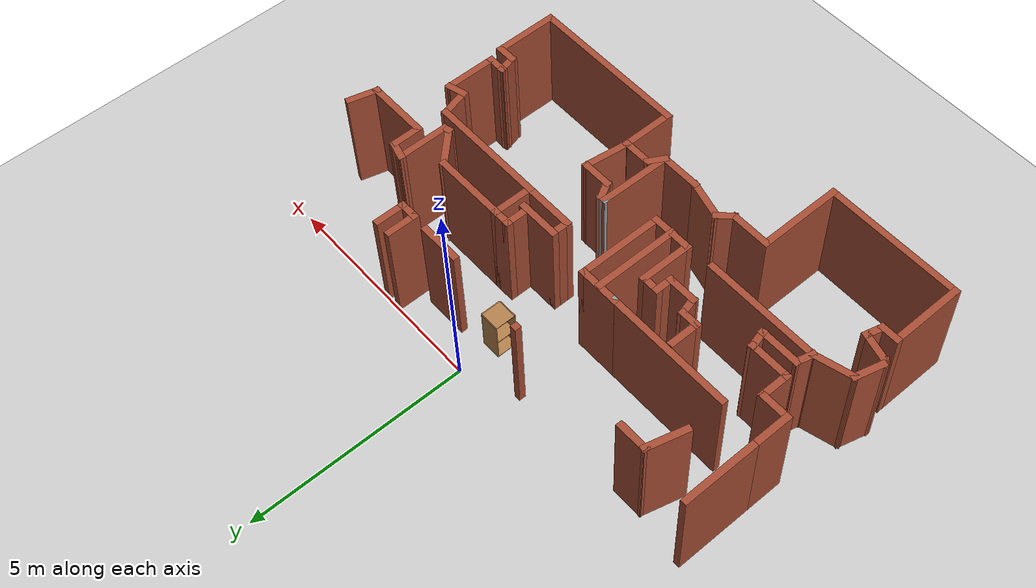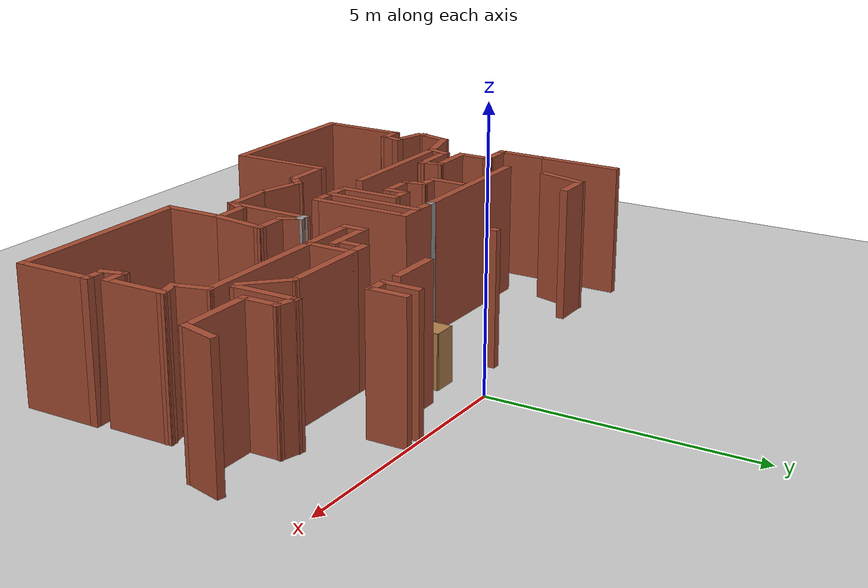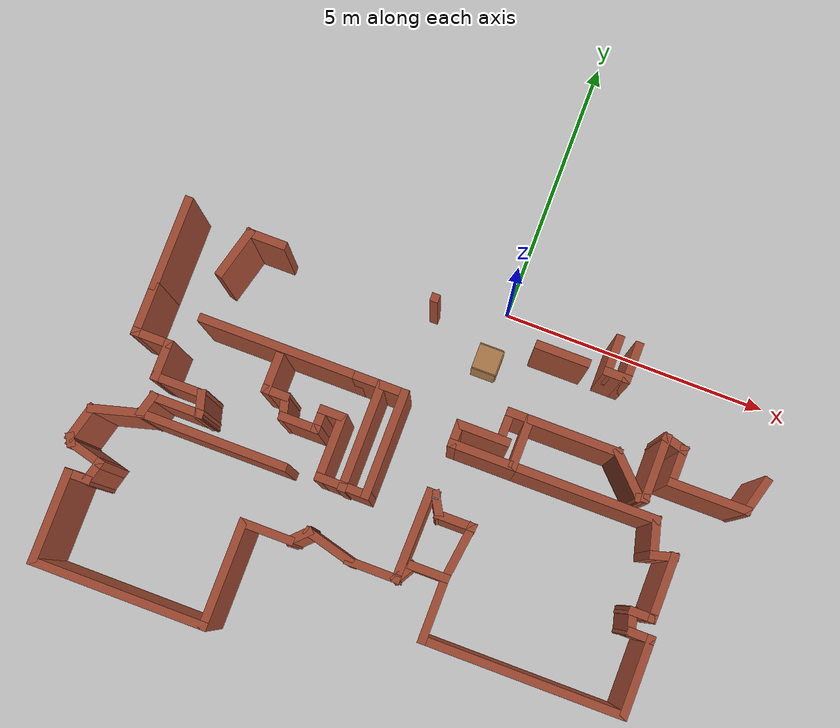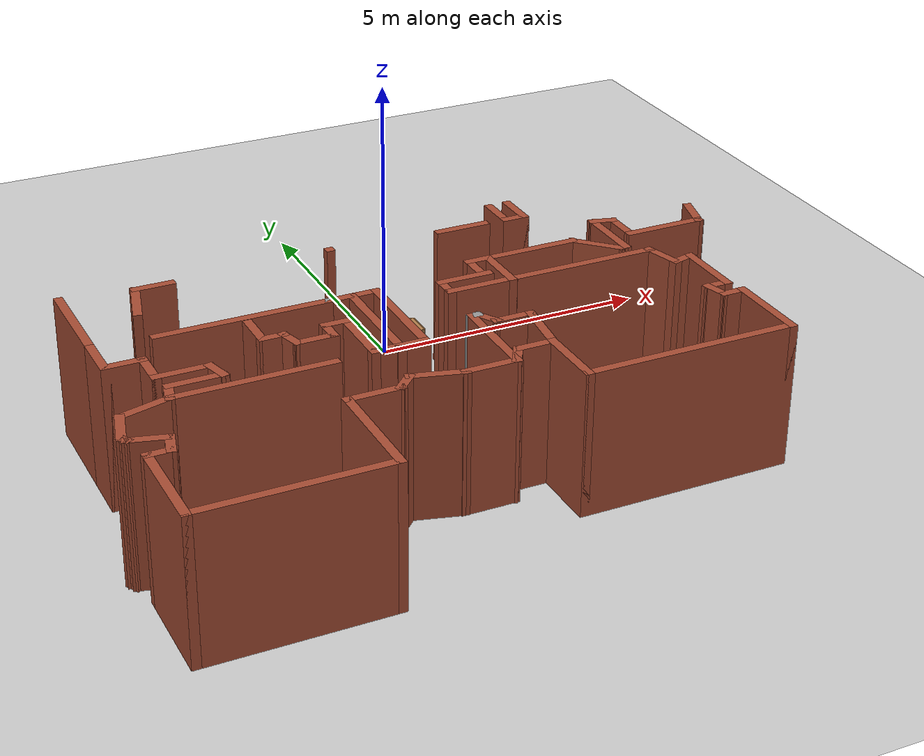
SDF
<sdf version="1.7">
 <world name="default">
  <model name="ground_plane">
   <static>1</static>
   <link name="link">
    <collision name="collision">
     <geometry><plane><normal>0 0 1</normal><size>100 100</size></plane></geometry>
     <surface>
      <contact><collide_bitmask>65535</collide_bitmask></contact>
      <friction><ode><mu>100</mu><mu2>50</mu2></ode></friction>
     </surface>
    </collision>
    <visual name="visual">
     <cast_shadows>0</cast_shadows>
     <geometry><plane><normal>0 0 1</normal><size>100 100</size></plane></geometry>
     <material>
      <script><uri>file://media/materials/scripts/gazebo.material</uri><name>Gazebo/Grey</name></script>
     </material>
    </visual>
   </link>
  </model>
  <model name="map_14">
   <pose>-1.02181 -0.3828 0 0 -0 0</pose>
   <link name="Wall_143">
    <collision name="Wall_143_Collision">
     <geometry><box><size>1 0.15 2.5</size></box></geometry>
     <pose>0 0 1.25 0 -0 0</pose>
    </collision>
    <visual name="Wall_143_Visual">
     <pose>0 0 1.25 0 -0 0</pose>
     <geometry><box><size>1 0.15 2.5</size></box></geometry>
     <material>
      <script><uri>file://media/materials/scripts/gazebo.material</uri><name>Gazebo/Bricks</name></script>
      <ambient>1 1 1 1</ambient>
     </material>
     <meta><layer>0</layer></meta>
    </visual>
    <pose>2.19503 -0.283539 0 0 -0 0</pose>
   </link>
   <link name="Wall_148">
    <collision name="Wall_148_Collision">
     <geometry><box><size>0.75 0.15 2.5</size></box></geometry>
     <pose>0 0 1.25 0 -0 0</pose>
    </collision>
    <visual name="Wall_148_Visual">
     <pose>0 0 1.25 0 -0 0</pose>
     <geometry><box><size>0.75 0.15 2.5</size></box></geometry>
     <material>
      <script><uri>file://media/materials/scripts/gazebo.material</uri><name>Gazebo/Bricks</name></script>
      <ambient>1 1 1 1</ambient>
     </material>
     <meta><layer>0</layer></meta>
    </visual>
    <pose>3.02129 -0.004847 0 0 -0 -1.5708</pose>
   </link>
   <link name="Wall_149">
    <collision name="Wall_149_Collision">
     <geometry><box><size>0.5 0.15 2.5</size></box></geometry>
     <pose>0 0 1.25 0 -0 0</pose>
    </collision>
    <visual name="Wall_149_Visual">
     <pose>0 0 1.25 0 -0 0</pose>
     <geometry><box><size>0.5 0.15 2.5</size></box></geometry>
     <material>
      <script><uri>file://media/materials/scripts/gazebo.material</uri><name>Gazebo/Bricks</name></script>
      <ambient>1 1 1 1</ambient>
     </material>
     <meta><layer>0</layer></meta>
    </visual>
    <pose>3.19629 -0.304847 0 0 -0 0</pose>
   </link>
   <link name="Wall_150">
    <collision name="Wall_150_Collision">
     <geometry><box><size>0.75 0.15 2.5</size></box></geometry>
     <pose>0 0 1.25 0 -0 0</pose>
    </collision>
    <visual name="Wall_150_Visual">
     <pose>0 0 1.25 0 -0 0</pose>
     <geometry><box><size>0.75 0.15 2.5</size></box></geometry>
     <material>
      <script><uri>file://media/materials/scripts/gazebo.material</uri><name>Gazebo/Bricks</name></script>
      <ambient>1 1 1 1</ambient>
     </material>
     <meta><layer>0</layer></meta>
    </visual>
    <pose>3.37129 -0.004847 0 0 -0 1.5708</pose>
   </link>
   <link name="Wall_156">
    <collision name="Wall_156_Collision">
     <geometry><box><size>0.15 0.15 2.5</size></box></geometry>
     <pose>0 0 1.25 0 -0 0</pose>
    </collision>
    <visual name="Wall_156_Visual">
     <pose>0 0 1.25 0 -0 0</pose>
     <geometry><box><size>0.15 0.15 2.5</size></box></geometry>
     <material>
      <script><uri>file://media/materials/scripts/gazebo.material</uri><name>Gazebo/Bricks</name></script>
      <ambient>1 1 1 1</ambient>
     </material>
     <meta><layer>0</layer></meta>
    </visual>
    <pose>-0.202978 -0.141349 0 0 -0 0</pose>
   </link>
   <link name="Wall_160">
    <collision name="Wall_160_Collision">
     <geometry><box><size>0.75 0.15 2.5</size></box></geometry>
     <pose>0 0 1.25 0 -0 0</pose>
    </collision>
    <visual name="Wall_160_Visual">
     <pose>0 0 1.25 0 -0 0</pose>
     <geometry><box><size>0.75 0.15 2.5</size></box></geometry>
     <material>
      <script><uri>file://media/materials/scripts/gazebo.material</uri><name>Gazebo/Bricks</name></script>
      <ambient>1 1 1 1</ambient>
     </material>
     <meta><layer>0</layer></meta>
    </visual>
    <pose>-3.30827 -0.201289 0 0 -0 3.14159</pose>
   </link>
   <link name="Wall_161">
    <collision name="Wall_161_Collision">
     <geometry><box><size>1 0.15 2.5</size></box></geometry>
     <pose>0 0 1.25 0 -0 0</pose>
    </collision>
    <visual name="Wall_161_Visual">
     <pose>0 0 1.25 0 -0 0</pose>
     <geometry><box><size>1 0.15 2.5</size></box></geometry>
     <material>
      <script><uri>file://media/materials/scripts/gazebo.material</uri><name>Gazebo/Bricks</name></script>
      <ambient>1 1 1 1</ambient>
     </material>
     <meta><layer>0</layer></meta>
    </visual>
    <pose>-3.71827 -0.611807 0 0 -0 -1.8326</pose>
   </link>
   <link name="Wall_163">
    <collision name="Wall_163_Collision">
     <geometry><box><size>3 0.15 2.5</size></box></geometry>
     <pose>0 0 1.25 0 -0 0</pose>
    </collision>
    <visual name="Wall_163_Visual">
     <pose>0 0 1.25 0 -0 0</pose>
     <geometry><box><size>3 0.15 2.5</size></box></geometry>
     <material>
      <script><uri>file://media/materials/scripts/gazebo.material</uri><name>Gazebo/Bricks</name></script>
      <ambient>1 1 1 1</ambient>
     </material>
     <meta><layer>0</layer></meta>
    </visual>
    <pose>-2.39233 -1.87711 0 0 -0 0</pose>
   </link>
   <link name="Wall_164">
    <collision name="Wall_164_Collision">
     <geometry><box><size>0.15 0.15 2.5</size></box></geometry>
     <pose>0 0 1.25 0 -0 0</pose>
    </collision>
    <visual name="Wall_164_Visual">
     <pose>0 0 1.25 0 -0 0</pose>
     <geometry><box><size>0.15 0.15 2.5</size></box></geometry>
     <material>
      <script><uri>file://media/materials/scripts/gazebo.material</uri><name>Gazebo/Grey</name></script>
      <ambient>1 1 1 1</ambient>
     </material>
     <meta><layer>0</layer></meta>
    </visual>
    <pose>-0.967326 -1.87711 0 0 -0 0</pose>
   </link>
   <link name="Wall_165">
    <collision name="Wall_165_Collision">
     <geometry><box><size>1 0.15 2.5</size></box></geometry>
     <pose>0 0 1.25 0 -0 0</pose>
    </collision>
    <visual name="Wall_165_Visual">
     <pose>0 0 1.25 0 -0 0</pose>
     <geometry><box><size>1 0.15 2.5</size></box></geometry>
     <material>
      <script><uri>file://media/materials/scripts/gazebo.material</uri><name>Gazebo/Bricks</name></script>
      <ambient>1 1 1 1</ambient>
     </material>
     <meta><layer>0</layer></meta>
    </visual>
    <pose>-0.542326 -1.87711 0 0 -0 0</pose>
   </link>
   <link name="Wall_166">
    <collision name="Wall_166_Collision">
     <geometry><box><size>2 0.15 2.5</size></box></geometry>
     <pose>0 0 1.25 0 -0 0</pose>
    </collision>
    <visual name="Wall_166_Visual">
     <pose>0 0 1.25 0 -0 0</pose>
     <geometry><box><size>2 0.15 2.5</size></box></geometry>
     <material>
      <script><uri>file://media/materials/scripts/gazebo.material</uri><name>Gazebo/Bricks</name></script>
      <ambient>1 1 1 1</ambient>
     </material>
     <meta><layer>0</layer></meta>
    </visual>
    <pose>-0.117326 -2.80211 0 0 -0 -1.5708</pose>
   </link>
   <link name="Wall_167">
    <collision name="Wall_167_Collision">
     <geometry><box><size>1 0.15 2.5</size></box></geometry>
     <pose>0 0 1.25 0 -0 0</pose>
    </collision>
    <visual name="Wall_167_Visual">
     <pose>0 0 1.25 0 -0 0</pose>
     <geometry><box><size>1 0.15 2.5</size></box></geometry>
     <material>
      <script><uri>file://media/materials/scripts/gazebo.material</uri><name>Gazebo/Bricks</name></script>
      <ambient>1 1 1 1</ambient>
     </material>
     <meta><layer>0</layer></meta>
    </visual>
    <pose>-0.542326 -3.72711 0 0 -0 3.14159</pose>
   </link>
   <link name="Wall_168">
    <collision name="Wall_168_Collision">
     <geometry><box><size>1.25 0.15 2.5</size></box></geometry>
     <pose>0 0 1.25 0 -0 0</pose>
    </collision>
    <visual name="Wall_168_Visual">
     <pose>0 0 1.25 0 -0 0</pose>
     <geometry><box><size>1.25 0.15 2.5</size></box></geometry>
     <material>
      <script><uri>file://media/materials/scripts/gazebo.material</uri><name>Gazebo/Bricks</name></script>
      <ambient>1 1 1 1</ambient>
     </material>
     <meta><layer>0</layer></meta>
    </visual>
    <pose>-0.967326 -3.17711 0 0 -0 1.5708</pose>
   </link>
   <link name="Wall_169">
    <collision name="Wall_169_Collision">
     <geometry><box><size>0.5 0.15 2.5</size></box></geometry>
     <pose>0 0 1.25 0 -0 0</pose>
    </collision>
    <visual name="Wall_169_Visual">
     <pose>0 0 1.25 0 -0 0</pose>
     <geometry><box><size>0.5 0.15 2.5</size></box></geometry>
     <material>
      <script><uri>file://media/materials/scripts/gazebo.material</uri><name>Gazebo/Bricks</name></script>
      <ambient>1 1 1 1</ambient>
     </material>
     <meta><layer>0</layer></meta>
    </visual>
    <pose>-1.14233 -2.62711 0 0 -0 3.14159</pose>
   </link>
   <link name="Wall_170">
    <collision name="Wall_170_Collision">
     <geometry><box><size>0.5 0.15 2.5</size></box></geometry>
     <pose>0 0 1.25 0 -0 0</pose>
    </collision>
    <visual name="Wall_170_Visual">
     <pose>0 0 1.25 0 -0 0</pose>
     <geometry><box><size>0.5 0.15 2.5</size></box></geometry>
     <material>
      <script><uri>file://media/materials/scripts/gazebo.material</uri><name>Gazebo/Bricks</name></script>
      <ambient>1 1 1 1</ambient>
     </material>
     <meta><layer>0</layer></meta>
    </visual>
    <pose>-1.31733 -2.80211 0 0 -0 -1.5708</pose>
   </link>
   <link name="Wall_171">
    <collision name="Wall_171_Collision">
     <geometry><box><size>0.75 0.15 2.5</size></box></geometry>
     <pose>0 0 1.25 0 -0 0</pose>
    </collision>
    <visual name="Wall_171_Visual">
     <pose>0 0 1.25 0 -0 0</pose>
     <geometry><box><size>0.75 0.15 2.5</size></box></geometry>
     <material>
      <script><uri>file://media/materials/scripts/gazebo.material</uri><name>Gazebo/Bricks</name></script>
      <ambient>1 1 1 1</ambient>
     </material>
     <meta><layer>0</layer></meta>
    </visual>
    <pose>-1.61733 -2.97711 0 0 -0 3.14159</pose>
   </link>
   <link name="Wall_172">
    <collision name="Wall_172_Collision">
     <geometry><box><size>0.5 0.15 2.5</size></box></geometry>
     <pose>0 0 1.25 0 -0 0</pose>
    </collision>
    <visual name="Wall_172_Visual">
     <pose>0 0 1.25 0 -0 0</pose>
     <geometry><box><size>0.5 0.15 2.5</size></box></geometry>
     <material>
      <script><uri>file://media/materials/scripts/gazebo.material</uri><name>Gazebo/Bricks</name></script>
      <ambient>1 1 1 1</ambient>
     </material>
     <meta><layer>0</layer></meta>
    </visual>
    <pose>-1.96262 -2.80808 0 0 -0 1.8326</pose>
   </link>
   <link name="Wall_173">
    <collision name="Wall_173_Collision">
     <geometry><box><size>0.5 0.15 2.5</size></box></geometry>
     <pose>0 0 1.25 0 -0 0</pose>
    </collision>
    <visual name="Wall_173_Visual">
     <pose>0 0 1.25 0 -0 0</pose>
     <geometry><box><size>0.5 0.15 2.5</size></box></geometry>
     <material>
      <script><uri>file://media/materials/scripts/gazebo.material</uri><name>Gazebo/Bricks</name></script>
      <ambient>1 1 1 1</ambient>
     </material>
     <meta><layer>0</layer></meta>
    </visual>
    <pose>-2.18291 -2.63904 0 0 -0 3.14159</pose>
   </link>
   <link name="Wall_174">
    <collision name="Wall_174_Collision">
     <geometry><box><size>0.75 0.15 2.5</size></box></geometry>
     <pose>0 0 1.25 0 -0 0</pose>
    </collision>
    <visual name="Wall_174_Visual">
     <pose>0 0 1.25 0 -0 0</pose>
     <geometry><box><size>0.75 0.15 2.5</size></box></geometry>
     <material>
      <script><uri>file://media/materials/scripts/gazebo.material</uri><name>Gazebo/Bricks</name></script>
      <ambient>1 1 1 1</ambient>
     </material>
     <meta><layer>0</layer></meta>
    </visual>
    <pose>-2.35791 -2.33904 0 0 -0 1.5708</pose>
   </link>
   <link name="Wall_176">
    <collision name="Wall_176_Collision">
     <geometry><box><size>2 0.15 2.5</size></box></geometry>
     <pose>0 0 1.25 0 -0 0</pose>
    </collision>
    <visual name="Wall_176_Visual">
     <pose>0 0 1.25 0 -0 0</pose>
     <geometry><box><size>2 0.15 2.5</size></box></geometry>
     <material>
      <script><uri>file://media/materials/scripts/gazebo.material</uri><name>Gazebo/Bricks</name></script>
      <ambient>1 1 1 1</ambient>
     </material>
     <meta><layer>0</layer></meta>
    </visual>
    <pose>-0.538814 -2.82223 0 0 -0 -1.5708</pose>
   </link>
   <link name="Wall_178">
    <collision name="Wall_178_Collision">
     <geometry><box><size>2.75 0.15 2.5</size></box></geometry>
     <pose>0 0 1.25 0 -0 0</pose>
    </collision>
    <visual name="Wall_178_Visual">
     <pose>0 0 1.25 0 -0 0</pose>
     <geometry><box><size>2.75 0.15 2.5</size></box></geometry>
     <material>
      <script><uri>file://media/materials/scripts/gazebo.material</uri><name>Gazebo/Bricks</name></script>
      <ambient>1 1 1 1</ambient>
     </material>
     <meta><layer>0</layer></meta>
    </visual>
    <pose>-2.91629 -3.77157 0 0 -0 0</pose>
   </link>
   <link name="Wall_180">
    <collision name="Wall_180_Collision">
     <geometry><box><size>1.71861 0.15 2.5</size></box></geometry>
     <pose>0 0 1.25 0 -0 0</pose>
    </collision>
    <visual name="Wall_180_Visual">
     <pose>0 0 1.25 0 -0 0</pose>
     <geometry><box><size>1.71861 0.15 2.5</size></box></geometry>
     <material>
      <script><uri>file://media/materials/scripts/gazebo.material</uri><name>Gazebo/Bricks</name></script>
      <ambient>1 1 1 1</ambient>
     </material>
     <meta><layer>0</layer></meta>
    </visual>
    <pose>0.877062 -4.08939 0 0 -0 -1.58634</pose>
   </link>
   <link name="Wall_182">
    <collision name="Wall_182_Collision">
     <geometry><box><size>0.25 0.15 2.5</size></box></geometry>
     <pose>0 0 1.25 0 -0 0</pose>
    </collision>
    <visual name="Wall_182_Visual">
     <pose>0 0 1.25 0 -0 0</pose>
     <geometry><box><size>0.25 0.15 2.5</size></box></geometry>
     <material>
      <script><uri>file://media/materials/scripts/gazebo.material</uri><name>Gazebo/Grey</name></script>
      <ambient>1 1 1 1</ambient>
     </material>
     <meta><layer>0</layer></meta>
    </visual>
    <pose>0.939249 -3.30518 0 0 -0 0</pose>
   </link>
   <link name="Wall_183">
    <collision name="Wall_183_Collision">
     <geometry><box><size>0.5 0.15 2.5</size></box></geometry>
     <pose>0 0 1.25 0 -0 0</pose>
    </collision>
    <visual name="Wall_183_Visual">
     <pose>0 0 1.25 0 -0 0</pose>
     <geometry><box><size>0.5 0.15 2.5</size></box></geometry>
     <material>
      <script><uri>file://media/materials/scripts/gazebo.material</uri><name>Gazebo/Bricks</name></script>
      <ambient>1 1 1 1</ambient>
     </material>
     <meta><layer>0</layer></meta>
    </visual>
    <pose>1.07675 -3.45673 0 0 -0 -1.0472</pose>
   </link>
   <link name="Wall_184">
    <collision name="Wall_184_Collision">
     <geometry><box><size>0.75 0.15 2.5</size></box></geometry>
     <pose>0 0 1.25 0 -0 0</pose>
    </collision>
    <visual name="Wall_184_Visual">
     <pose>0 0 1.25 0 -0 0</pose>
     <geometry><box><size>0.75 0.15 2.5</size></box></geometry>
     <material>
      <script><uri>file://media/materials/scripts/gazebo.material</uri><name>Gazebo/Bricks</name></script>
      <ambient>1 1 1 1</ambient>
     </material>
     <meta><layer>0</layer></meta>
    </visual>
    <pose>1.46425 -3.60829 0 0 -0 0</pose>
   </link>
   <link name="Wall_185">
    <collision name="Wall_185_Collision">
     <geometry><box><size>1.12021 0.15 2.5</size></box></geometry>
     <pose>0 0 1.25 0 -0 0</pose>
    </collision>
    <visual name="Wall_185_Visual">
     <pose>0 0 1.25 0 -0 0</pose>
     <geometry><box><size>1.12021 0.15 2.5</size></box></geometry>
     <material>
      <script><uri>file://media/materials/scripts/gazebo.material</uri><name>Gazebo/Bricks</name></script>
      <ambient>1 1 1 1</ambient>
     </material>
     <meta><layer>0</layer></meta>
    </visual>
    <pose>1.70206 -4.08939 0 0 -0 -1.69934</pose>
   </link>
   <link name="Wall_187">
    <collision name="Wall_187_Collision">
     <geometry><box><size>0.5 0.15 2.5</size></box></geometry>
     <pose>0 0 1.25 0 -0 0</pose>
    </collision>
    <visual name="Wall_187_Visual">
     <pose>0 0 1.25 0 -0 0</pose>
     <geometry><box><size>0.5 0.15 2.5</size></box></geometry>
     <material>
      <script><uri>file://media/materials/scripts/gazebo.material</uri><name>Gazebo/Bricks</name></script>
      <ambient>1 1 1 1</ambient>
     </material>
     <meta><layer>0</layer></meta>
    </visual>
    <pose>1.88092 -1.54345 0 0 -0 3.14159</pose>
   </link>
   <link name="Wall_188">
    <collision name="Wall_188_Collision">
     <geometry><box><size>0.5 0.15 2.5</size></box></geometry>
     <pose>0 0 1.25 0 -0 0</pose>
    </collision>
    <visual name="Wall_188_Visual">
     <pose>0 0 1.25 0 -0 0</pose>
     <geometry><box><size>0.5 0.15 2.5</size></box></geometry>
     <material>
      <script><uri>file://media/materials/scripts/gazebo.material</uri><name>Gazebo/Bricks</name></script>
      <ambient>1 1 1 1</ambient>
     </material>
     <meta><layer>0</layer></meta>
    </visual>
    <pose>1.70592 -1.71845 0 0 -0 -1.5708</pose>
   </link>
   <link name="Wall_191">
    <collision name="Wall_191_Collision">
     <geometry><box><size>1.25 0.15 2.5</size></box></geometry>
     <pose>0 0 1.25 0 -0 0</pose>
    </collision>
    <visual name="Wall_191_Visual">
     <pose>0 0 1.25 0 -0 0</pose>
     <geometry><box><size>1.25 0.15 2.5</size></box></geometry>
     <material>
      <script><uri>file://media/materials/scripts/gazebo.material</uri><name>Gazebo/Bricks</name></script>
      <ambient>1 1 1 1</ambient>
     </material>
     <meta><layer>0</layer></meta>
    </visual>
    <pose>1.50592 -2.39345 0 0 -0 3.14159</pose>
   </link>
   <link name="Wall_192">
    <collision name="Wall_192_Collision">
     <geometry><box><size>0.5 0.15 2.5</size></box></geometry>
     <pose>0 0 1.25 0 -0 0</pose>
    </collision>
    <visual name="Wall_192_Visual">
     <pose>0 0 1.25 0 -0 0</pose>
     <geometry><box><size>0.5 0.15 2.5</size></box></geometry>
     <material>
      <script><uri>file://media/materials/scripts/gazebo.material</uri><name>Gazebo/Bricks</name></script>
      <ambient>1 1 1 1</ambient>
     </material>
     <meta><layer>0</layer></meta>
    </visual>
    <pose>0.955923 -2.21845 0 0 -0 1.5708</pose>
   </link>
   <link name="Wall_193">
    <collision name="Wall_193_Collision">
     <geometry><box><size>1 0.15 2.5</size></box></geometry>
     <pose>0 0 1.25 0 -0 0</pose>
    </collision>
    <visual name="Wall_193_Visual">
     <pose>0 0 1.25 0 -0 0</pose>
     <geometry><box><size>1 0.15 2.5</size></box></geometry>
     <material>
      <script><uri>file://media/materials/scripts/gazebo.material</uri><name>Gazebo/Bricks</name></script>
      <ambient>1 1 1 1</ambient>
     </material>
     <meta><layer>0</layer></meta>
    </visual>
    <pose>1.38092 -2.04345 0 0 -0 0</pose>
   </link>
   <link name="Wall_24">
    <collision name="Wall_24_Collision">
     <geometry><box><size>1.75 0.15 2.5</size></box></geometry>
     <pose>0 0 1.25 0 -0 0</pose>
    </collision>
    <visual name="Wall_24_Visual">
     <pose>0 0 1.25 0 -0 0</pose>
     <geometry><box><size>1.75 0.15 2.5</size></box></geometry>
     <material>
      <script><uri>file://media/materials/scripts/gazebo.material</uri><name>Gazebo/Bricks</name></script>
      <ambient>1 1 1 1</ambient>
     </material>
     <meta><layer>0</layer></meta>
    </visual>
    <pose>-4.81629 -0.845424 0 0 -0 -1.5708</pose>
   </link>
   <link name="Wall_28">
    <collision name="Wall_28_Collision">
     <geometry><box><size>1 0.15 2.5</size></box></geometry>
     <pose>0 0 1.25 0 -0 0</pose>
    </collision>
    <visual name="Wall_28_Visual">
     <pose>0 0 1.25 0 -0 0</pose>
     <geometry><box><size>1 0.15 2.5</size></box></geometry>
     <material>
      <script><uri>file://media/materials/scripts/gazebo.material</uri><name>Gazebo/Bricks</name></script>
      <ambient>1 1 1 1</ambient>
     </material>
     <meta><layer>0</layer></meta>
    </visual>
    <pose>-4.81629 -2.07042 0 0 -0 -1.5708</pose>
   </link>
   <link name="Wall_29">
    <collision name="Wall_29_Collision">
     <geometry><box><size>0.75 0.15 2.5</size></box></geometry>
     <pose>0 0 1.25 0 -0 0</pose>
    </collision>
    <visual name="Wall_29_Visual">
     <pose>0 0 1.25 0 -0 0</pose>
     <geometry><box><size>0.75 0.15 2.5</size></box></geometry>
     <material>
      <script><uri>file://media/materials/scripts/gazebo.material</uri><name>Gazebo/Bricks</name></script>
      <ambient>1 1 1 1</ambient>
     </material>
     <meta><layer>0</layer></meta>
    </visual>
    <pose>-4.51629 -2.49542 0 0 -0 0</pose>
   </link>
   <link name="Wall_30">
    <collision name="Wall_30_Collision">
     <geometry><box><size>0.75 0.15 2.5</size></box></geometry>
     <pose>0 0 1.25 0 -0 0</pose>
    </collision>
    <visual name="Wall_30_Visual">
     <pose>0 0 1.25 0 -0 0</pose>
     <geometry><box><size>0.75 0.15 2.5</size></box></geometry>
     <material>
      <script><uri>file://media/materials/scripts/gazebo.material</uri><name>Gazebo/Bricks</name></script>
      <ambient>1 1 1 1</ambient>
     </material>
     <meta><layer>0</layer></meta>
    </visual>
    <pose>-4.21629 -2.79542 0 0 -0 -1.5708</pose>
   </link>
   <link name="Wall_31">
    <collision name="Wall_31_Collision">
     <geometry><box><size>1 0.15 2.5</size></box></geometry>
     <pose>0 0 1.25 0 -0 0</pose>
    </collision>
    <visual name="Wall_31_Visual">
     <pose>0 0 1.25 0 -0 0</pose>
     <geometry><box><size>1 0.15 2.5</size></box></geometry>
     <material>
      <script><uri>file://media/materials/scripts/gazebo.material</uri><name>Gazebo/Bricks</name></script>
      <ambient>1 1 1 1</ambient>
     </material>
     <meta><layer>0</layer></meta>
    </visual>
    <pose>-3.79129 -3.09542 0 0 -0 0</pose>
   </link>
   <link name="Wall_32">
    <collision name="Wall_32_Collision">
     <geometry><box><size>0.5 0.15 2.5</size></box></geometry>
     <pose>0 0 1.25 0 -0 0</pose>
    </collision>
    <visual name="Wall_32_Visual">
     <pose>0 0 1.25 0 -0 0</pose>
     <geometry><box><size>0.5 0.15 2.5</size></box></geometry>
     <material>
      <script><uri>file://media/materials/scripts/gazebo.material</uri><name>Gazebo/Bricks</name></script>
      <ambient>1 1 1 1</ambient>
     </material>
     <meta><layer>0</layer></meta>
    </visual>
    <pose>-3.321 -3.26446 0 0 -0 -1.309</pose>
   </link>
   <link name="Wall_33">
    <collision name="Wall_33_Collision">
     <geometry><box><size>1 0.15 2.5</size></box></geometry>
     <pose>0 0 1.25 0 -0 0</pose>
    </collision>
    <visual name="Wall_33_Visual">
     <pose>0 0 1.25 0 -0 0</pose>
     <geometry><box><size>1 0.15 2.5</size></box></geometry>
     <material>
      <script><uri>file://media/materials/scripts/gazebo.material</uri><name>Gazebo/Bricks</name></script>
      <ambient>1 1 1 1</ambient>
     </material>
     <meta><layer>0</layer></meta>
    </visual>
    <pose>-3.7007 -3.4335 0 0 -0 3.14159</pose>
   </link>
   <link name="Wall_34">
    <collision name="Wall_34_Collision">
     <geometry><box><size>0.5 0.15 2.5</size></box></geometry>
     <pose>0 0 1.25 0 -0 0</pose>
    </collision>
    <visual name="Wall_34_Visual">
     <pose>0 0 1.25 0 -0 0</pose>
     <geometry><box><size>0.5 0.15 2.5</size></box></geometry>
     <material>
      <script><uri>file://media/materials/scripts/gazebo.material</uri><name>Gazebo/Bricks</name></script>
      <ambient>1 1 1 1</ambient>
     </material>
     <meta><layer>0</layer></meta>
    </visual>
    <pose>-4.171 -3.60254 0 0 -0 -1.8326</pose>
   </link>
   <link name="Wall_35">
    <collision name="Wall_35_Collision">
     <geometry><box><size>1 0.15 2.5</size></box></geometry>
     <pose>0 0 1.25 0 -0 0</pose>
    </collision>
    <visual name="Wall_35_Visual">
     <pose>0 0 1.25 0 -0 0</pose>
     <geometry><box><size>1 0.15 2.5</size></box></geometry>
     <material>
      <script><uri>file://media/materials/scripts/gazebo.material</uri><name>Gazebo/Bricks</name></script>
      <ambient>1 1 1 1</ambient>
     </material>
     <meta><layer>0</layer></meta>
    </visual>
    <pose>-4.62681 -3.88157 0 0 -0 -2.87979</pose>
   </link>
   <link name="Wall_36">
    <collision name="Wall_36_Collision">
     <geometry><box><size>0.75 0.15 2.5</size></box></geometry>
     <pose>0 0 1.25 0 -0 0</pose>
    </collision>
    <visual name="Wall_36_Visual">
     <pose>0 0 1.25 0 -0 0</pose>
     <geometry><box><size>0.75 0.15 2.5</size></box></geometry>
     <material>
      <script><uri>file://media/materials/scripts/gazebo.material</uri><name>Gazebo/Bricks</name></script>
      <ambient>1 1 1 1</ambient>
     </material>
     <meta><layer>0</layer></meta>
    </visual>
    <pose>-5.11497 -4.28135 0 0 -0 -1.8326</pose>
   </link>
   <link name="Wall_38">
    <collision name="Wall_38_Collision">
     <geometry><box><size>0.25 0.15 2.5</size></box></geometry>
     <pose>0 0 1.25 0 -0 0</pose>
    </collision>
    <visual name="Wall_38_Visual">
     <pose>0 0 1.25 0 -0 0</pose>
     <geometry><box><size>0.25 0.15 2.5</size></box></geometry>
     <material>
      <script><uri>file://media/materials/scripts/gazebo.material</uri><name>Gazebo/Bricks</name></script>
      <ambient>1 1 1 1</ambient>
     </material>
     <meta><layer>0</layer></meta>
    </visual>
    <pose>-5.16762 -4.61442 0 0 -0 -1.0472</pose>
   </link>
   <link name="Wall_39">
    <collision name="Wall_39_Collision">
     <geometry><box><size>0.75 0.15 2.5</size></box></geometry>
     <pose>0 0 1.25 0 -0 0</pose>
    </collision>
    <visual name="Wall_39_Visual">
     <pose>0 0 1.25 0 -0 0</pose>
     <geometry><box><size>0.75 0.15 2.5</size></box></geometry>
     <material>
      <script><uri>file://media/materials/scripts/gazebo.material</uri><name>Gazebo/Bricks</name></script>
      <ambient>1 1 1 1</ambient>
     </material>
     <meta><layer>0</layer></meta>
    </visual>
    <pose>-4.85284 -4.73537 0 0 -0 -0.261799</pose>
   </link>
   <link name="Wall_40">
    <collision name="Wall_40_Collision">
     <geometry><box><size>0.5 0.15 2.5</size></box></geometry>
     <pose>0 0 1.25 0 -0 0</pose>
    </collision>
    <visual name="Wall_40_Visual">
     <pose>0 0 1.25 0 -0 0</pose>
     <geometry><box><size>0.5 0.15 2.5</size></box></geometry>
     <material>
      <script><uri>file://media/materials/scripts/gazebo.material</uri><name>Gazebo/Bricks</name></script>
      <ambient>1 1 1 1</ambient>
     </material>
     <meta><layer>0</layer></meta>
    </visual>
    <pose>-4.60836 -4.98205 0 0 -0 -1.8326</pose>
   </link>
   <link name="Wall_41">
    <collision name="Wall_41_Collision">
     <geometry><box><size>0.5 0.15 2.5</size></box></geometry>
     <pose>0 0 1.25 0 -0 0</pose>
    </collision>
    <visual name="Wall_41_Visual">
     <pose>0 0 1.25 0 -0 0</pose>
     <geometry><box><size>0.5 0.15 2.5</size></box></geometry>
     <material>
      <script><uri>file://media/materials/scripts/gazebo.material</uri><name>Gazebo/Bricks</name></script>
      <ambient>1 1 1 1</ambient>
     </material>
     <meta><layer>0</layer></meta>
    </visual>
    <pose>-4.82865 -5.15109 0 0 -0 3.14159</pose>
   </link>
   <link name="Wall_42">
    <collision name="Wall_42_Collision">
     <geometry><box><size>1.75 0.15 2.5</size></box></geometry>
     <pose>0 0 1.25 0 -0 0</pose>
    </collision>
    <visual name="Wall_42_Visual">
     <pose>0 0 1.25 0 -0 0</pose>
     <geometry><box><size>1.75 0.15 2.5</size></box></geometry>
     <material>
      <script><uri>file://media/materials/scripts/gazebo.material</uri><name>Gazebo/Bricks</name></script>
      <ambient>1 1 1 1</ambient>
     </material>
     <meta><layer>0</layer></meta>
    </visual>
    <pose>-5.00365 -5.95109 0 0 -0 -1.5708</pose>
   </link>
   <link name="Wall_47">
    <collision name="Wall_47_Collision">
     <geometry><box><size>3.25 0.15 2.5</size></box></geometry>
     <pose>0 0 1.25 0 -0 0</pose>
    </collision>
    <visual name="Wall_47_Visual">
     <pose>0 0 1.25 0 -0 0</pose>
     <geometry><box><size>3.25 0.15 2.5</size></box></geometry>
     <material>
      <script><uri>file://media/materials/scripts/gazebo.material</uri><name>Gazebo/Bricks</name></script>
      <ambient>1 1 1 1</ambient>
     </material>
     <meta><layer>0</layer></meta>
    </visual>
    <pose>-3.45365 -6.75109 0 0 -0 0</pose>
   </link>
   <link name="Wall_48">
    <collision name="Wall_48_Collision">
     <geometry><box><size>2 0.15 2.5</size></box></geometry>
     <pose>0 0 1.25 0 -0 0</pose>
    </collision>
    <visual name="Wall_48_Visual">
     <pose>0 0 1.25 0 -0 0</pose>
     <geometry><box><size>2 0.15 2.5</size></box></geometry>
     <material>
      <script><uri>file://media/materials/scripts/gazebo.material</uri><name>Gazebo/Bricks</name></script>
      <ambient>1 1 1 1</ambient>
     </material>
     <meta><layer>0</layer></meta>
    </visual>
    <pose>-1.90365 -5.82609 0 0 -0 1.5708</pose>
   </link>
   <link name="Wall_49">
    <collision name="Wall_49_Collision">
     <geometry><box><size>1 0.15 2.5</size></box></geometry>
     <pose>0 0 1.25 0 -0 0</pose>
    </collision>
    <visual name="Wall_49_Visual">
     <pose>0 0 1.25 0 -0 0</pose>
     <geometry><box><size>1 0.15 2.5</size></box></geometry>
     <material>
      <script><uri>file://media/materials/scripts/gazebo.material</uri><name>Gazebo/Bricks</name></script>
      <ambient>1 1 1 1</ambient>
     </material>
     <meta><layer>0</layer></meta>
    </visual>
    <pose>-1.47865 -4.90109 0 0 -0 0</pose>
   </link>
   <link name="Wall_50">
    <collision name="Wall_50_Collision">
     <geometry><box><size>0.5 0.15 2.5</size></box></geometry>
     <pose>0 0 1.25 0 -0 0</pose>
    </collision>
    <visual name="Wall_50_Visual">
     <pose>0 0 1.25 0 -0 0</pose>
     <geometry><box><size>0.5 0.15 2.5</size></box></geometry>
     <material>
      <script><uri>file://media/materials/scripts/gazebo.material</uri><name>Gazebo/Bricks</name></script>
      <ambient>1 1 1 1</ambient>
     </material>
     <meta><layer>0</layer></meta>
    </visual>
    <pose>-0.929906 -4.77735 0 0 -0 0.785398</pose>
   </link>
   <link name="Wall_51">
    <collision name="Wall_51_Collision">
     <geometry><box><size>1 0.15 2.5</size></box></geometry>
     <pose>0 0 1.25 0 -0 0</pose>
    </collision>
    <visual name="Wall_51_Visual">
     <pose>0 0 1.25 0 -0 0</pose>
     <geometry><box><size>1 0.15 2.5</size></box></geometry>
     <material>
      <script><uri>file://media/materials/scripts/gazebo.material</uri><name>Gazebo/Bricks</name></script>
      <ambient>1 1 1 1</ambient>
     </material>
     <meta><layer>0</layer></meta>
    </visual>
    <pose>-0.395644 -4.7636 0 0 -0 -0.261799</pose>
   </link>
   <link name="Wall_52">
    <collision name="Wall_52_Collision">
     <geometry><box><size>1 0.15 2.5</size></box></geometry>
     <pose>0 0 1.25 0 -0 0</pose>
    </collision>
    <visual name="Wall_52_Visual">
     <pose>0 0 1.25 0 -0 0</pose>
     <geometry><box><size>1 0.15 2.5</size></box></geometry>
     <material>
      <script><uri>file://media/materials/scripts/gazebo.material</uri><name>Gazebo/Bricks</name></script>
      <ambient>1 1 1 1</ambient>
     </material>
     <meta><layer>0</layer></meta>
    </visual>
    <pose>0.439875 -4.8736 0 0 -0 0</pose>
   </link>
   <link name="Wall_53">
    <collision name="Wall_53_Collision">
     <geometry><box><size>0.5 0.15 2.5</size></box></geometry>
     <pose>0 0 1.25 0 -0 0</pose>
    </collision>
    <visual name="Wall_53_Visual">
     <pose>0 0 1.25 0 -0 0</pose>
     <geometry><box><size>0.5 0.15 2.5</size></box></geometry>
     <material>
      <script><uri>file://media/materials/scripts/gazebo.material</uri><name>Gazebo/Bricks</name></script>
      <ambient>1 1 1 1</ambient>
     </material>
     <meta><layer>0</layer></meta>
    </visual>
    <pose>0.952375 -4.72205 0 0 -0 1.0472</pose>
   </link>
   <link name="Wall_54">
    <collision name="Wall_54_Collision">
     <geometry><box><size>0.75 0.15 2.5</size></box></geometry>
     <pose>0 0 1.25 0 -0 0</pose>
    </collision>
    <visual name="Wall_54_Visual">
     <pose>0 0 1.25 0 -0 0</pose>
     <geometry><box><size>0.75 0.15 2.5</size></box></geometry>
     <material>
      <script><uri>file://media/materials/scripts/gazebo.material</uri><name>Gazebo/Bricks</name></script>
      <ambient>1 1 1 1</ambient>
     </material>
     <meta><layer>0</layer></meta>
    </visual>
    <pose>1.33987 -4.57049 0 0 -0 0</pose>
   </link>
   <link name="Wall_55">
    <collision name="Wall_55_Collision">
     <geometry><box><size>1.25 0.15 2.5</size></box></geometry>
     <pose>0 0 1.25 0 -0 0</pose>
    </collision>
    <visual name="Wall_55_Visual">
     <pose>0 0 1.25 0 -0 0</pose>
     <geometry><box><size>1.25 0.15 2.5</size></box></geometry>
     <material>
      <script><uri>file://media/materials/scripts/gazebo.material</uri><name>Gazebo/Bricks</name></script>
      <ambient>1 1 1 1</ambient>
     </material>
     <meta><layer>0</layer></meta>
    </visual>
    <pose>1.63987 -5.12049 0 0 -0 -1.5708</pose>
   </link>
   <link name="Wall_56">
    <collision name="Wall_56_Collision">
     <geometry><box><size>3.75 0.15 2.5</size></box></geometry>
     <pose>0 0 1.25 0 -0 0</pose>
    </collision>
    <visual name="Wall_56_Visual">
     <pose>0 0 1.25 0 -0 0</pose>
     <geometry><box><size>3.75 0.15 2.5</size></box></geometry>
     <material>
      <script><uri>file://media/materials/scripts/gazebo.material</uri><name>Gazebo/Bricks</name></script>
      <ambient>1 1 1 1</ambient>
     </material>
     <meta><layer>0</layer></meta>
    </visual>
    <pose>3.43987 -5.67049 0 0 -0 0</pose>
   </link>
   <link name="Wall_57">
    <collision name="Wall_57_Collision">
     <geometry><box><size>1.5 0.15 2.5</size></box></geometry>
     <pose>0 0 1.25 0 -0 0</pose>
    </collision>
    <visual name="Wall_57_Visual">
     <pose>0 0 1.25 0 -0 0</pose>
     <geometry><box><size>1.5 0.15 2.5</size></box></geometry>
     <material>
      <script><uri>file://media/materials/scripts/gazebo.material</uri><name>Gazebo/Bricks</name></script>
      <ambient>1 1 1 1</ambient>
     </material>
     <meta><layer>0</layer></meta>
    </visual>
    <pose>5.23987 -4.99549 0 0 -0 1.5708</pose>
   </link>
   <link name="Wall_60">
    <collision name="Wall_60_Collision">
     <geometry><box><size>0.5 0.15 2.5</size></box></geometry>
     <pose>0 0 1.25 0 -0 0</pose>
    </collision>
    <visual name="Wall_60_Visual">
     <pose>0 0 1.25 0 -0 0</pose>
     <geometry><box><size>0.5 0.15 2.5</size></box></geometry>
     <material>
      <script><uri>file://media/materials/scripts/gazebo.material</uri><name>Gazebo/Bricks</name></script>
      <ambient>1 1 1 1</ambient>
     </material>
     <meta><layer>0</layer></meta>
    </visual>
    <pose>5.06487 -4.32049 0 0 -0 3.14159</pose>
   </link>
   <link name="Wall_61">
    <collision name="Wall_61_Collision">
     <geometry><box><size>0.5 0.15 2.5</size></box></geometry>
     <pose>0 0 1.25 0 -0 0</pose>
    </collision>
    <visual name="Wall_61_Visual">
     <pose>0 0 1.25 0 -0 0</pose>
     <geometry><box><size>0.5 0.15 2.5</size></box></geometry>
     <material>
      <script><uri>file://media/materials/scripts/gazebo.material</uri><name>Gazebo/Bricks</name></script>
      <ambient>1 1 1 1</ambient>
     </material>
     <meta><layer>0</layer></meta>
    </visual>
    <pose>4.84458 -4.15146 0 0 -0 1.8326</pose>
   </link>
   <link name="Wall_62">
    <collision name="Wall_62_Collision">
     <geometry><box><size>0.5 0.15 2.5</size></box></geometry>
     <pose>0 0 1.25 0 -0 0</pose>
    </collision>
    <visual name="Wall_62_Visual">
     <pose>0 0 1.25 0 -0 0</pose>
     <geometry><box><size>0.5 0.15 2.5</size></box></geometry>
     <material>
      <script><uri>file://media/materials/scripts/gazebo.material</uri><name>Gazebo/Bricks</name></script>
      <ambient>1 1 1 1</ambient>
     </material>
     <meta><layer>0</layer></meta>
    </visual>
    <pose>4.97429 -3.98242 0 0 -0 0</pose>
   </link>
   <link name="Wall_63">
    <collision name="Wall_63_Collision">
     <geometry><box><size>1.25 0.15 2.5</size></box></geometry>
     <pose>0 0 1.25 0 -0 0</pose>
    </collision>
    <visual name="Wall_63_Visual">
     <pose>0 0 1.25 0 -0 0</pose>
     <geometry><box><size>1.25 0.15 2.5</size></box></geometry>
     <material>
      <script><uri>file://media/materials/scripts/gazebo.material</uri><name>Gazebo/Bricks</name></script>
      <ambient>1 1 1 1</ambient>
     </material>
     <meta><layer>0</layer></meta>
    </visual>
    <pose>5.14929 -3.43242 0 0 -0 1.5708</pose>
   </link>
   <link name="Wall_64">
    <collision name="Wall_64_Collision">
     <geometry><box><size>0.5 0.15 2.5</size></box></geometry>
     <pose>0 0 1.25 0 -0 0</pose>
    </collision>
    <visual name="Wall_64_Visual">
     <pose>0 0 1.25 0 -0 0</pose>
     <geometry><box><size>0.5 0.15 2.5</size></box></geometry>
     <material>
      <script><uri>file://media/materials/scripts/gazebo.material</uri><name>Gazebo/Bricks</name></script>
      <ambient>1 1 1 1</ambient>
     </material>
     <meta><layer>0</layer></meta>
    </visual>
    <pose>4.98025 -2.92771 0 0 -0 -2.87979</pose>
   </link>
   <link name="Wall_65">
    <collision name="Wall_65_Collision">
     <geometry><box><size>0.75 0.15 2.5</size></box></geometry>
     <pose>0 0 1.25 0 -0 0</pose>
    </collision>
    <visual name="Wall_65_Visual">
     <pose>0 0 1.25 0 -0 0</pose>
     <geometry><box><size>0.75 0.15 2.5</size></box></geometry>
     <material>
      <script><uri>file://media/materials/scripts/gazebo.material</uri><name>Gazebo/Bricks</name></script>
      <ambient>1 1 1 1</ambient>
     </material>
     <meta><layer>0</layer></meta>
    </visual>
    <pose>4.73357 -2.68323 0 0 -0 1.8326</pose>
   </link>
   <link name="Wall_66">
    <collision name="Wall_66_Collision">
     <geometry><box><size>2.75 0.15 2.5</size></box></geometry>
     <pose>0 0 1.25 0 -0 0</pose>
    </collision>
    <visual name="Wall_66_Visual">
     <pose>0 0 1.25 0 -0 0</pose>
     <geometry><box><size>2.75 0.15 2.5</size></box></geometry>
     <material>
      <script><uri>file://media/materials/scripts/gazebo.material</uri><name>Gazebo/Bricks</name></script>
      <ambient>1 1 1 1</ambient>
     </material>
     <meta><layer>0</layer></meta>
    </visual>
    <pose>3.35592 -2.39345 0 0 -0 3.14159</pose>
   </link>
   <link name="Wall_69">
    <collision name="Wall_69_Collision">
     <geometry><box><size>1 0.15 2.5</size></box></geometry>
     <pose>0 0 1.25 0 -0 0</pose>
    </collision>
    <visual name="Wall_69_Visual">
     <pose>0 0 1.25 0 -0 0</pose>
     <geometry><box><size>1 0.15 2.5</size></box></geometry>
     <material>
      <script><uri>file://media/materials/scripts/gazebo.material</uri><name>Gazebo/Bricks</name></script>
      <ambient>1 1 1 1</ambient>
     </material>
     <meta><layer>0</layer></meta>
    </visual>
    <pose>2.05592 -1.96845 0 0 -0 1.5708</pose>
   </link>
   <link name="Wall_70">
    <collision name="Wall_70_Collision">
     <geometry><box><size>1.75 0.15 2.5</size></box></geometry>
     <pose>0 0 1.25 0 -0 0</pose>
    </collision>
    <visual name="Wall_70_Visual">
     <pose>0 0 1.25 0 -0 0</pose>
     <geometry><box><size>1.75 0.15 2.5</size></box></geometry>
     <material>
      <script><uri>file://media/materials/scripts/gazebo.material</uri><name>Gazebo/Bricks</name></script>
      <ambient>1 1 1 1</ambient>
     </material>
     <meta><layer>0</layer></meta>
    </visual>
    <pose>2.85592 -1.54345 0 0 -0 0</pose>
   </link>
   <link name="Wall_71">
    <collision name="Wall_71_Collision">
     <geometry><box><size>1 0.15 2.5</size></box></geometry>
     <pose>0 0 1.25 0 -0 0</pose>
    </collision>
    <visual name="Wall_71_Visual">
     <pose>0 0 1.25 0 -0 0</pose>
     <geometry><box><size>1 0.15 2.5</size></box></geometry>
     <material>
      <script><uri>file://media/materials/scripts/gazebo.material</uri><name>Gazebo/Bricks</name></script>
      <ambient>1 1 1 1</ambient>
     </material>
     <meta><layer>0</layer></meta>
    </visual>
    <pose>3.95644 -1.84397 0 0 -0 -0.785398</pose>
   </link>
   <link name="Wall_72">
    <collision name="Wall_72_Collision">
     <geometry><box><size>0.25 0.15 2.5</size></box></geometry>
     <pose>0 0 1.25 0 -0 0</pose>
    </collision>
    <visual name="Wall_72_Visual">
     <pose>0 0 1.25 0 -0 0</pose>
     <geometry><box><size>0.25 0.15 2.5</size></box></geometry>
     <material>
      <script><uri>file://media/materials/scripts/gazebo.material</uri><name>Gazebo/Bricks</name></script>
      <ambient>1 1 1 1</ambient>
     </material>
     <meta><layer>0</layer></meta>
    </visual>
    <pose>4.30526 -2.13155 0 0 -0 0.261799</pose>
   </link>
   <link name="Wall_73">
    <collision name="Wall_73_Collision">
     <geometry><box><size>1.25 0.15 2.5</size></box></geometry>
     <pose>0 0 1.25 0 -0 0</pose>
    </collision>
    <visual name="Wall_73_Visual">
     <pose>0 0 1.25 0 -0 0</pose>
     <geometry><box><size>1.25 0.15 2.5</size></box></geometry>
     <material>
      <script><uri>file://media/materials/scripts/gazebo.material</uri><name>Gazebo/Bricks</name></script>
      <ambient>1 1 1 1</ambient>
     </material>
     <meta><layer>0</layer></meta>
    </visual>
    <pose>4.35356 -1.56861 0 0 -0 1.5708</pose>
   </link>
   <link name="Wall_74">
    <collision name="Wall_74_Collision">
     <geometry><box><size>0.5 0.15 2.5</size></box></geometry>
     <pose>0 0 1.25 0 -0 0</pose>
    </collision>
    <visual name="Wall_74_Visual">
     <pose>0 0 1.25 0 -0 0</pose>
     <geometry><box><size>0.5 0.15 2.5</size></box></geometry>
     <material>
      <script><uri>file://media/materials/scripts/gazebo.material</uri><name>Gazebo/Bricks</name></script>
      <ambient>1 1 1 1</ambient>
     </material>
     <meta><layer>0</layer></meta>
    </visual>
    <pose>4.52259 -1.0639 0 0 -0 -0.261799</pose>
   </link>
   <link name="Wall_77">
    <collision name="Wall_77_Collision">
     <geometry><box><size>0.75 0.15 2.5</size></box></geometry>
     <pose>0 0 1.25 0 -0 0</pose>
    </collision>
    <visual name="Wall_77_Visual">
     <pose>0 0 1.25 0 -0 0</pose>
     <geometry><box><size>0.75 0.15 2.5</size></box></geometry>
     <material>
      <script><uri>file://media/materials/scripts/gazebo.material</uri><name>Gazebo/Bricks</name></script>
      <ambient>1 1 1 1</ambient>
     </material>
     <meta><layer>0</layer></meta>
    </visual>
    <pose>4.69163 -1.40919 0 0 -0 -1.5708</pose>
   </link>
   <link name="Wall_78">
    <collision name="Wall_78_Collision">
     <geometry><box><size>1.5 0.15 2.5</size></box></geometry>
     <pose>0 0 1.25 0 -0 0</pose>
    </collision>
    <visual name="Wall_78_Visual">
     <pose>0 0 1.25 0 -0 0</pose>
     <geometry><box><size>1.5 0.15 2.5</size></box></geometry>
     <material>
      <script><uri>file://media/materials/scripts/gazebo.material</uri><name>Gazebo/Bricks</name></script>
      <ambient>1 1 1 1</ambient>
     </material>
     <meta><layer>0</layer></meta>
    </visual>
    <pose>5.36663 -1.7092 0 0 -0 0</pose>
   </link>
   <link name="Wall_81">
    <collision name="Wall_81_Collision">
     <geometry><box><size>0.75 0.15 2.5</size></box></geometry>
     <pose>0 0 1.25 0 -0 0</pose>
    </collision>
    <visual name="Wall_81_Visual">
     <pose>0 0 1.25 0 -0 0</pose>
     <geometry><box><size>0.75 0.15 2.5</size></box></geometry>
     <material>
      <script><uri>file://media/materials/scripts/gazebo.material</uri><name>Gazebo/Bricks</name></script>
      <ambient>1 1 1 1</ambient>
     </material>
     <meta><layer>0</layer></meta>
    </visual>
    <pose>6.11928 -1.41942 0 0 -0 1.309</pose>
   </link>
   <static>1</static>
  </model>
  <model name="cabinet">
   <static>1</static>
   <link name="cabinet_bottom_plate">
    <inertial>
     <pose>0 0 -1 0 -0 0</pose>
     <inertia><ixx>2.05</ixx><ixy>0</ixy><ixz>0</ixz><iyy>2.05</iyy><iyz>0</iyz><izz>2.05</izz></inertia>
     <mass>25</mass>
    </inertial>
    <collision name="cabinet_bottom_plate_geom">
     <pose>0 0 0.01 0 -0 0</pose>
     <geometry><box><size>0.45 0.45 0.02</size></box></geometry>
    </collision>
    <visual name="cabinet_bottom_plate_geom_visual">
     <pose>0 0 0.01 0 -0 0</pose>
     <geometry><box><size>0.45 0.45 0.02</size></box></geometry>
     <material>
      <script><uri>file://media/materials/scripts/gazebo.material</uri><name>Gazebo/Wood</name></script>
     </material>
    </visual>
    <collision name="cabinet_bottom_plate_geom_cabinet_back_plate">
     <pose>0.235 0 0.51 0 -0 0</pose>
     <geometry><box><size>0.02 0.45 1.02</size></box></geometry>
    </collision>
    <visual name="cabinet_bottom_plate_geom_cabinet_back_plate_visual">
     <pose>0.235 0 0.51 0 -0 0</pose>
     <geometry><box><size>0.02 0.45 1.02</size></box></geometry>
     <material>
      <script><uri>file://media/materials/scripts/gazebo.material</uri><name>Gazebo/Wood</name></script>
     </material>
    </visual>
    <collision name="cabinet_bottom_plate_geom_cabinet_left_plate">
     <pose>0 0.235 0.51 0 -0 0</pose>
     <geometry><box><size>0.45 0.02 1.02</size></box></geometry>
    </collision>
    <visual name="cabinet_bottom_plate_geom_cabinet_left_plate_visual">
     <pose>0 0.235 0.51 0 -0 0</pose>
     <geometry><box><size>0.45 0.02 1.02</size></box></geometry>
     <material>
      <script><uri>file://media/materials/scripts/gazebo.material</uri><name>Gazebo/Wood</name></script>
     </material>
    </visual>
    <collision name="cabinet_bottom_plate_geom_cabinet_middle_plate">
     <pose>0 0 0.51 0 -0 0</pose>
     <geometry><box><size>0.45 0.45 0.02</size></box></geometry>
    </collision>
    <visual name="cabinet_bottom_plate_geom_cabinet_middle_plate_visual">
     <pose>0 0 0.51 0 -0 0</pose>
     <geometry><box><size>0.45 0.45 0.02</size></box></geometry>
     <material>
      <script><uri>file://media/materials/scripts/gazebo.material</uri><name>Gazebo/Wood</name></script>
     </material>
    </visual>
    <collision name="cabinet_bottom_plate_geom_cabinet_right_plate">
     <pose>0 -0.235 0.51 0 -0 0</pose>
     <geometry><box><size>0.45 0.02 1.02</size></box></geometry>
    </collision>
    <visual name="cabinet_bottom_plate_geom_cabinet_right_plate_visual">
     <pose>0 -0.235 0.51 0 -0 0</pose>
     <geometry><box><size>0.45 0.02 1.02</size></box></geometry>
     <material>
      <script><uri>file://media/materials/scripts/gazebo.material</uri><name>Gazebo/Wood</name></script>
     </material>
    </visual>
    <collision name="cabinet_bottom_plate_geom_cabinet_top_plate">
     <pose>0 0 1.01 0 -0 0</pose>
     <geometry><box><size>0.45 0.45 0.02</size></box></geometry>
    </collision>
    <visual name="cabinet_bottom_plate_geom_cabinet_top_plate_visual">
     <pose>0 0 1.01 0 -0 0</pose>
     <geometry><box><size>0.45 0.45 0.02</size></box></geometry>
     <material>
      <script><uri>file://media/materials/scripts/gazebo.material</uri><name>Gazebo/Wood</name></script>
     </material>
    </visual>
   </link>
   <pose>-0.032482 -1.01543 0 0 -0 0</pose>
  </model>
 </world>
</sdf>
